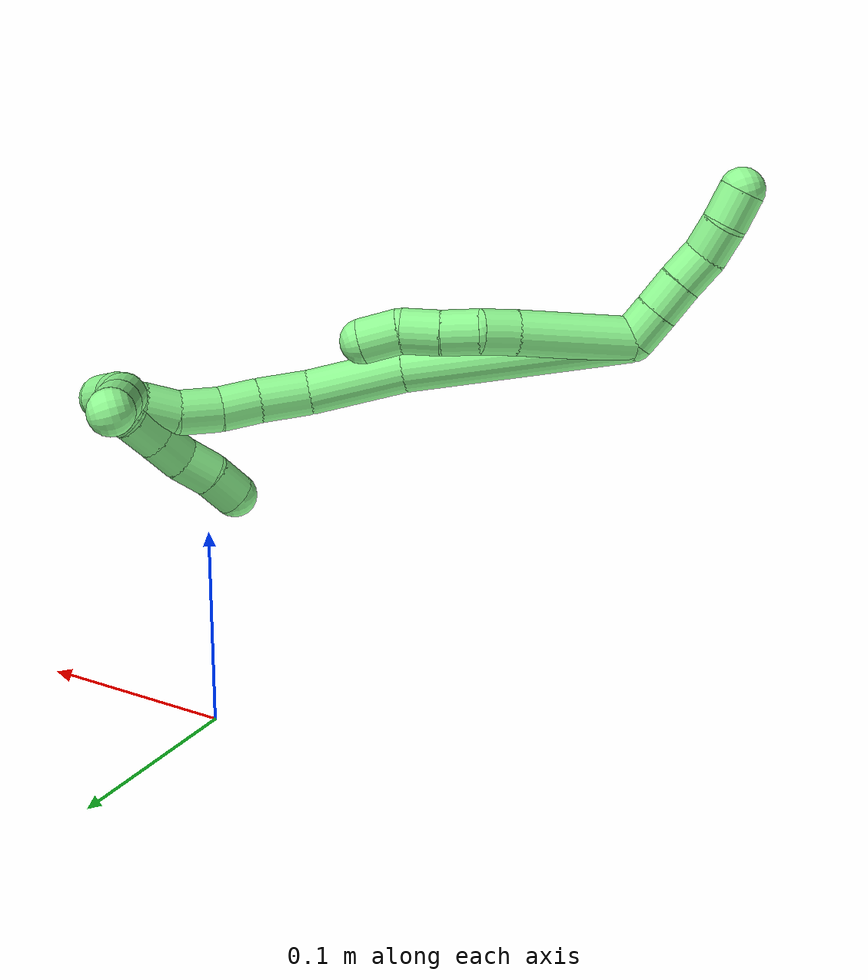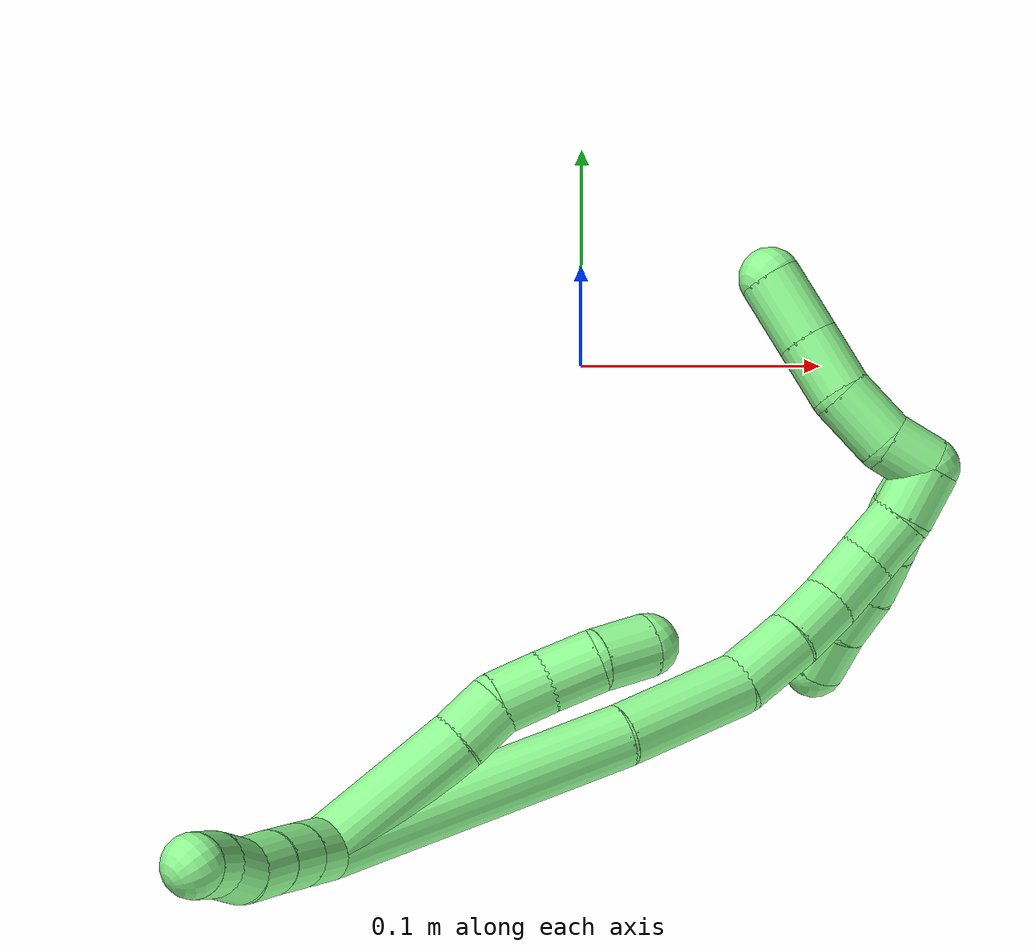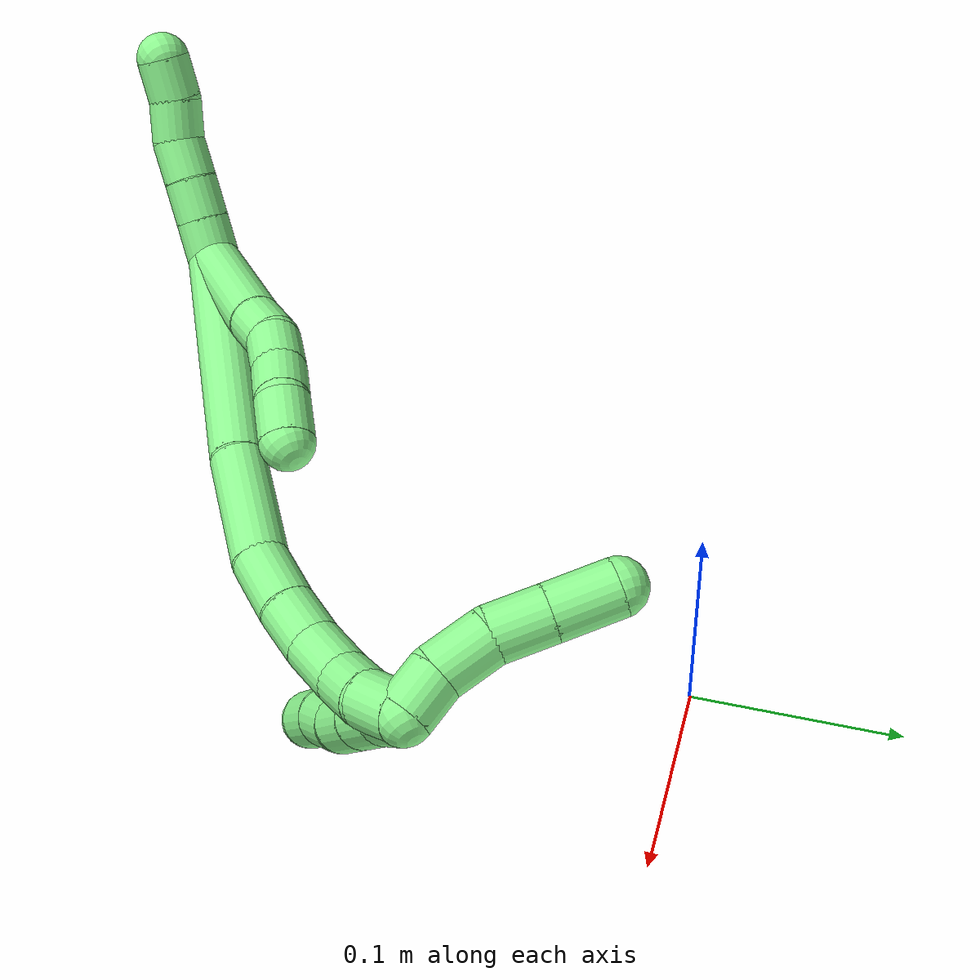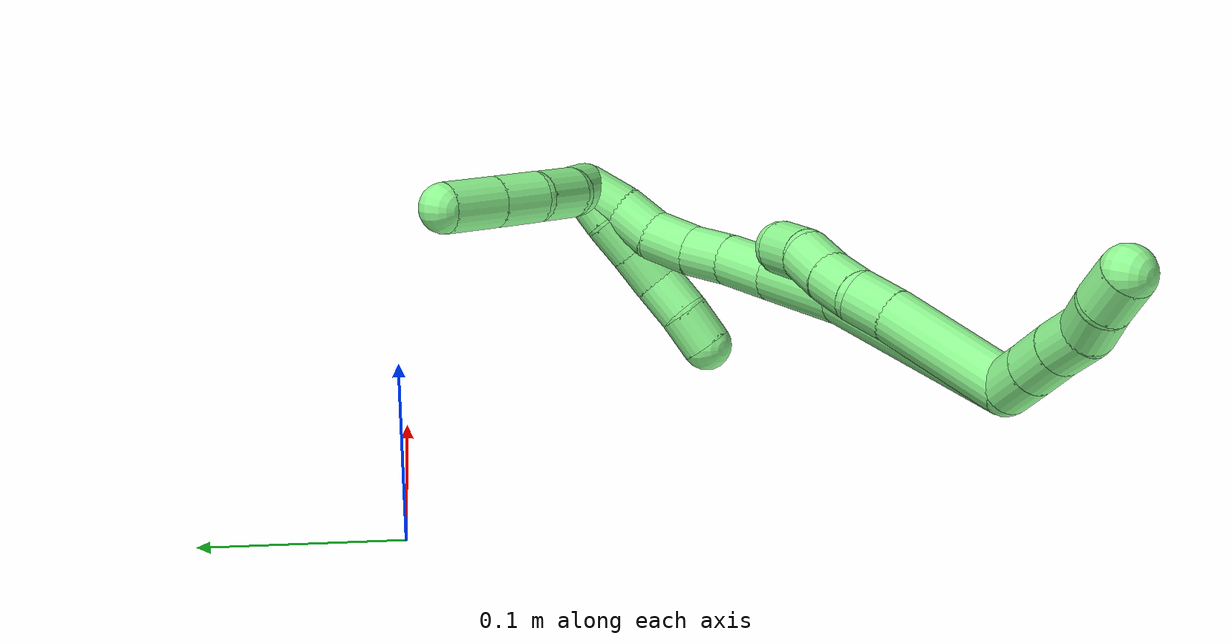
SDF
<sdf version="1.7">
 <world name="default">
  <model name="13">
   <static>0</static>
   <link name="13">
    <collision name="collision-cylinder-e_1_2_8">
     <pose>0.01048 0.004071 -0.03047 -3.00879 0.328565 -2.37861</pose>
     <geometry><cylinder><radius>0.0125</radius><length>0.064956</length></cylinder></geometry>
     <surface>
      <friction><ode><mu>1.16</mu><mu2>1.16</mu2><slip1>0</slip1><slip2>0</slip2></ode></friction>
      <contact><ode><kp>1e+06</kp><kd>1</kd><max_vel>0</max_vel><min_depth>0.001</min_depth></ode></contact>
     </surface>
    </collision>
    <visual name="visual-cylinder-e_1_2_8">
     <pose>0.01048 0.004071 -0.03047 -3.00879 0.328565 -2.37861</pose>
     <geometry><cylinder><radius>0.0125</radius><length>0.064956</length></cylinder></geometry>
     <material><ambient>0.564706 0.984314 0.572549 1</ambient></material>
    </visual>
    <collision name="collision-cylinder-e_2_8_9">
     <pose>0.023794 0.010101 -0.07051 -2.93959 0.282357 -1.90268</pose>
     <geometry><cylinder><radius>0.0125</radius><length>0.020344</length></cylinder></geometry>
     <surface>
      <friction><ode><mu>1.16</mu><mu2>1.16</mu2><slip1>0</slip1><slip2>0</slip2></ode></friction>
      <contact><ode><kp>1e+06</kp><kd>1</kd><max_vel>0</max_vel><min_depth>0.001</min_depth></ode></contact>
     </surface>
    </collision>
    <visual name="visual-cylinder-e_2_8_9">
     <pose>0.023794 0.010101 -0.07051 -2.93959 0.282357 -1.90268</pose>
     <geometry><cylinder><radius>0.0125</radius><length>0.020344</length></cylinder></geometry>
     <material><ambient>0.564706 0.984314 0.572549 1</ambient></material>
    </visual>
    <collision name="collision-cylinder-e_3_9_10">
     <pose>0.029497 0.010533 -0.09007 2.9898 0.276575 2.14146</pose>
     <geometry><cylinder><radius>0.0125</radius><length>0.02101</length></cylinder></geometry>
     <surface>
      <friction><ode><mu>1.16</mu><mu2>1.16</mu2><slip1>0</slip1><slip2>0</slip2></ode></friction>
      <contact><ode><kp>1e+06</kp><kd>1</kd><max_vel>0</max_vel><min_depth>0.001</min_depth></ode></contact>
     </surface>
    </collision>
    <visual name="visual-cylinder-e_3_9_10">
     <pose>0.029497 0.010533 -0.09007 2.9898 0.276575 2.14146</pose>
     <geometry><cylinder><radius>0.0125</radius><length>0.02101</length></cylinder></geometry>
     <material><ambient>0.564706 0.984314 0.572549 1</ambient></material>
    </visual>
    <collision name="collision-cylinder-e_4_10_11">
     <pose>0.036278 0.007262 -0.109939 2.96698 0.371839 2.27047</pose>
     <geometry><cylinder><radius>0.0125</radius><length>0.021536</length></cylinder></geometry>
     <surface>
      <friction><ode><mu>1.16</mu><mu2>1.16</mu2><slip1>0</slip1><slip2>0</slip2></ode></friction>
      <contact><ode><kp>1e+06</kp><kd>1</kd><max_vel>0</max_vel><min_depth>0.001</min_depth></ode></contact>
     </surface>
    </collision>
    <visual name="visual-cylinder-e_4_10_11">
     <pose>0.036278 0.007262 -0.109939 2.96698 0.371839 2.27047</pose>
     <geometry><cylinder><radius>0.0125</radius><length>0.021536</length></cylinder></geometry>
     <material><ambient>0.564706 0.984314 0.572549 1</ambient></material>
    </visual>
    <collision name="collision-cylinder-e_5_11_6">
     <pose>0.040981 0.002351 -0.130404 2.85078 0.071429 0.478623</pose>
     <geometry><cylinder><radius>0.0125</radius><length>0.022155</length></cylinder></geometry>
     <surface>
      <friction><ode><mu>1.16</mu><mu2>1.16</mu2><slip1>0</slip1><slip2>0</slip2></ode></friction>
      <contact><ode><kp>1e+06</kp><kd>1</kd><max_vel>0</max_vel><min_depth>0.001</min_depth></ode></contact>
     </surface>
    </collision>
    <visual name="visual-cylinder-e_5_11_6">
     <pose>0.040981 0.002351 -0.130404 2.85078 0.071429 0.478623</pose>
     <geometry><cylinder><radius>0.0125</radius><length>0.022155</length></cylinder></geometry>
     <material><ambient>0.564706 0.984314 0.572549 1</ambient></material>
    </visual>
    <collision name="collision-cylinder-e_1_2_12">
     <pose>0.005166 0.003029 0.008008 -0.361643 0.542882 -0.101673</pose>
     <geometry><cylinder><radius>0.0125</radius><length>0.02</length></cylinder></geometry>
     <surface>
      <friction><ode><mu>1.16</mu><mu2>1.16</mu2><slip1>0</slip1><slip2>0</slip2></ode></friction>
      <contact><ode><kp>1e+06</kp><kd>1</kd><max_vel>0</max_vel><min_depth>0.001</min_depth></ode></contact>
     </surface>
    </collision>
    <visual name="visual-cylinder-e_1_2_12">
     <pose>0.005166 0.003029 0.008008 -0.361643 0.542882 -0.101673</pose>
     <geometry><cylinder><radius>0.0125</radius><length>0.02</length></cylinder></geometry>
     <material><ambient>0.564706 0.984314 0.572549 1</ambient></material>
    </visual>
    <collision name="collision-cylinder-e_2_12_13">
     <pose>0.015608 0.00907 0.02396 -0.36231 0.555813 -0.104414</pose>
     <geometry><cylinder><radius>0.0125</radius><length>0.02</length></cylinder></geometry>
     <surface>
      <friction><ode><mu>1.16</mu><mu2>1.16</mu2><slip1>0</slip1><slip2>0</slip2></ode></friction>
      <contact><ode><kp>1e+06</kp><kd>1</kd><max_vel>0</max_vel><min_depth>0.001</min_depth></ode></contact>
     </surface>
    </collision>
    <visual name="visual-cylinder-e_2_12_13">
     <pose>0.015608 0.00907 0.02396 -0.36231 0.555813 -0.104414</pose>
     <geometry><cylinder><radius>0.0125</radius><length>0.02</length></cylinder></geometry>
     <material><ambient>0.564706 0.984314 0.572549 1</ambient></material>
    </visual>
    <collision name="collision-cylinder-e_3_13_14">
     <pose>0.025758 0.014923 0.04016 -0.331588 0.509032 -0.087009</pose>
     <geometry><cylinder><radius>0.0125</radius><length>0.02</length></cylinder></geometry>
     <surface>
      <friction><ode><mu>1.16</mu><mu2>1.16</mu2><slip1>0</slip1><slip2>0</slip2></ode></friction>
      <contact><ode><kp>1e+06</kp><kd>1</kd><max_vel>0</max_vel><min_depth>0.001</min_depth></ode></contact>
     </surface>
    </collision>
    <visual name="visual-cylinder-e_3_13_14">
     <pose>0.025758 0.014923 0.04016 -0.331588 0.509032 -0.087009</pose>
     <geometry><cylinder><radius>0.0125</radius><length>0.02</length></cylinder></geometry>
     <material><ambient>0.564706 0.984314 0.572549 1</ambient></material>
    </visual>
    <collision name="collision-cylinder-e_4_14_15">
     <pose>0.036461 0.022886 0.054725 -0.681774 0.62231 -0.227184</pose>
     <geometry><cylinder><radius>0.0125</radius><length>0.02</length></cylinder></geometry>
     <surface>
      <friction><ode><mu>1.16</mu><mu2>1.16</mu2><slip1>0</slip1><slip2>0</slip2></ode></friction>
      <contact><ode><kp>1e+06</kp><kd>1</kd><max_vel>0</max_vel><min_depth>0.001</min_depth></ode></contact>
     </surface>
    </collision>
    <visual name="visual-cylinder-e_4_14_15">
     <pose>0.036461 0.022886 0.054725 -0.681774 0.62231 -0.227184</pose>
     <geometry><cylinder><radius>0.0125</radius><length>0.02</length></cylinder></geometry>
     <material><ambient>0.564706 0.984314 0.572549 1</ambient></material>
    </visual>
    <collision name="collision-cylinder-e_5_15_5">
     <pose>0.049113 0.031305 0.067559 -0.468039 0.750923 -0.187375</pose>
     <geometry><cylinder><radius>0.0125</radius><length>0.02</length></cylinder></geometry>
     <surface>
      <friction><ode><mu>1.16</mu><mu2>1.16</mu2><slip1>0</slip1><slip2>0</slip2></ode></friction>
      <contact><ode><kp>1e+06</kp><kd>1</kd><max_vel>0</max_vel><min_depth>0.001</min_depth></ode></contact>
     </surface>
    </collision>
    <visual name="visual-cylinder-e_5_15_5">
     <pose>0.049113 0.031305 0.067559 -0.468039 0.750923 -0.187375</pose>
     <geometry><cylinder><radius>0.0125</radius><length>0.02</length></cylinder></geometry>
     <material><ambient>0.564706 0.984314 0.572549 1</ambient></material>
    </visual>
    <collision name="collision-cylinder-e_1_2_16">
     <pose>0.011744 -0.013809 -0.060744 2.91807 0.186342 1.38859</pose>
     <geometry><cylinder><radius>0.0125</radius><length>0.126783</length></cylinder></geometry>
     <surface>
      <friction><ode><mu>1.16</mu><mu2>1.16</mu2><slip1>0</slip1><slip2>0</slip2></ode></friction>
      <contact><ode><kp>1e+06</kp><kd>1</kd><max_vel>0</max_vel><min_depth>0.001</min_depth></ode></contact>
     </surface>
    </collision>
    <visual name="visual-cylinder-e_1_2_16">
     <pose>0.011744 -0.013809 -0.060744 2.91807 0.186342 1.38859</pose>
     <geometry><cylinder><radius>0.0125</radius><length>0.126783</length></cylinder></geometry>
     <material><ambient>0.564706 0.984314 0.572549 1</ambient></material>
    </visual>
    <collision name="collision-cylinder-e_2_16_17">
     <pose>0.02573 -0.032533 -0.148044 2.95856 0.08281 0.848087</pose>
     <geometry><cylinder><radius>0.0125</radius><length>0.054198</length></cylinder></geometry>
     <surface>
      <friction><ode><mu>1.16</mu><mu2>1.16</mu2><slip1>0</slip1><slip2>0</slip2></ode></friction>
      <contact><ode><kp>1e+06</kp><kd>1</kd><max_vel>0</max_vel><min_depth>0.001</min_depth></ode></contact>
     </surface>
    </collision>
    <visual name="visual-cylinder-e_2_16_17">
     <pose>0.02573 -0.032533 -0.148044 2.95856 0.08281 0.848087</pose>
     <geometry><cylinder><radius>0.0125</radius><length>0.054198</length></cylinder></geometry>
     <material><ambient>0.564706 0.984314 0.572549 1</ambient></material>
    </visual>
    <collision name="collision-cylinder-e_3_17_18">
     <pose>0.029713 -0.03624 -0.188907 -3.05735 0.120718 -1.92365</pose>
     <geometry><cylinder><radius>0.0125</radius><length>0.028927</length></cylinder></geometry>
     <surface>
      <friction><ode><mu>1.16</mu><mu2>1.16</mu2><slip1>0</slip1><slip2>0</slip2></ode></friction>
      <contact><ode><kp>1e+06</kp><kd>1</kd><max_vel>0</max_vel><min_depth>0.001</min_depth></ode></contact>
     </surface>
    </collision>
    <visual name="visual-cylinder-e_3_17_18">
     <pose>0.029713 -0.03624 -0.188907 -3.05735 0.120718 -1.92365</pose>
     <geometry><cylinder><radius>0.0125</radius><length>0.028927</length></cylinder></geometry>
     <material><ambient>0.564706 0.984314 0.572549 1</ambient></material>
    </visual>
    <collision name="collision-cylinder-e_4_18_19">
     <pose>0.032029 -0.033347 -0.214259 -2.99023 0.051349 -0.653096</pose>
     <geometry><cylinder><radius>0.0125</radius><length>0.022375</length></cylinder></geometry>
     <surface>
      <friction><ode><mu>1.16</mu><mu2>1.16</mu2><slip1>0</slip1><slip2>0</slip2></ode></friction>
      <contact><ode><kp>1e+06</kp><kd>1</kd><max_vel>0</max_vel><min_depth>0.001</min_depth></ode></contact>
     </surface>
    </collision>
    <visual name="visual-cylinder-e_4_18_19">
     <pose>0.032029 -0.033347 -0.214259 -2.99023 0.051349 -0.653096</pose>
     <geometry><cylinder><radius>0.0125</radius><length>0.022375</length></cylinder></geometry>
     <material><ambient>0.564706 0.984314 0.572549 1</ambient></material>
    </visual>
    <collision name="collision-cylinder-e_5_19_20">
     <pose>0.034669 -0.028525 -0.236768 -2.87438 0.172033 -1.14084</pose>
     <geometry><cylinder><radius>0.0125</radius><length>0.024126</length></cylinder></geometry>
     <surface>
      <friction><ode><mu>1.16</mu><mu2>1.16</mu2><slip1>0</slip1><slip2>0</slip2></ode></friction>
      <contact><ode><kp>1e+06</kp><kd>1</kd><max_vel>0</max_vel><min_depth>0.001</min_depth></ode></contact>
     </surface>
    </collision>
    <visual name="visual-cylinder-e_5_19_20">
     <pose>0.034669 -0.028525 -0.236768 -2.87438 0.172033 -1.14084</pose>
     <geometry><cylinder><radius>0.0125</radius><length>0.024126</length></cylinder></geometry>
     <material><ambient>0.564706 0.984314 0.572549 1</ambient></material>
    </visual>
    <collision name="collision-cylinder-e_6_20_21">
     <pose>0.04142 -0.021966 -0.256987 -2.76923 0.462475 -1.79209</pose>
     <geometry><cylinder><radius>0.0125</radius><length>0.021008</length></cylinder></geometry>
     <surface>
      <friction><ode><mu>1.16</mu><mu2>1.16</mu2><slip1>0</slip1><slip2>0</slip2></ode></friction>
      <contact><ode><kp>1e+06</kp><kd>1</kd><max_vel>0</max_vel><min_depth>0.001</min_depth></ode></contact>
     </surface>
    </collision>
    <visual name="visual-cylinder-e_6_20_21">
     <pose>0.04142 -0.021966 -0.256987 -2.76923 0.462475 -1.79209</pose>
     <geometry><cylinder><radius>0.0125</radius><length>0.021008</length></cylinder></geometry>
     <material><ambient>0.564706 0.984314 0.572549 1</ambient></material>
    </visual>
    <collision name="collision-cylinder-e_7_21_1">
     <pose>0.049883 -0.012747 -0.274665 -2.56514 0.341072 -1.05243</pose>
     <geometry><cylinder><radius>0.0125</radius><length>0.022582</length></cylinder></geometry>
     <surface>
      <friction><ode><mu>1.16</mu><mu2>1.16</mu2><slip1>0</slip1><slip2>0</slip2></ode></friction>
      <contact><ode><kp>1e+06</kp><kd>1</kd><max_vel>0</max_vel><min_depth>0.001</min_depth></ode></contact>
     </surface>
    </collision>
    <visual name="visual-cylinder-e_7_21_1">
     <pose>0.049883 -0.012747 -0.274665 -2.56514 0.341072 -1.05243</pose>
     <geometry><cylinder><radius>0.0125</radius><length>0.022582</length></cylinder></geometry>
     <material><ambient>0.564706 0.984314 0.572549 1</ambient></material>
    </visual>
    <collision name="collision-cylinder-e_1_1_22">
     <pose>0.046803 -0.011719 -0.278089 0.7149 -0.755576 -0.2943</pose>
     <geometry><cylinder><radius>0.0125</radius><length>0.02</length></cylinder></geometry>
     <surface>
      <friction><ode><mu>1.16</mu><mu2>1.16</mu2><slip1>0</slip1><slip2>0</slip2></ode></friction>
      <contact><ode><kp>1e+06</kp><kd>1</kd><max_vel>0</max_vel><min_depth>0.001</min_depth></ode></contact>
     </surface>
    </collision>
    <visual name="visual-cylinder-e_1_1_22">
     <pose>0.046803 -0.011719 -0.278089 0.7149 -0.755576 -0.2943</pose>
     <geometry><cylinder><radius>0.0125</radius><length>0.02</length></cylinder></geometry>
     <material><ambient>0.564706 0.984314 0.572549 1</ambient></material>
    </visual>
    <collision name="collision-cylinder-e_2_22_23">
     <pose>0.033571 -0.022507 -0.26778 0.896187 -0.691252 -0.342789</pose>
     <geometry><cylinder><radius>0.0125</radius><length>0.02</length></cylinder></geometry>
     <surface>
      <friction><ode><mu>1.16</mu><mu2>1.16</mu2><slip1>0</slip1><slip2>0</slip2></ode></friction>
      <contact><ode><kp>1e+06</kp><kd>1</kd><max_vel>0</max_vel><min_depth>0.001</min_depth></ode></contact>
     </surface>
    </collision>
    <visual name="visual-cylinder-e_2_22_23">
     <pose>0.033571 -0.022507 -0.26778 0.896187 -0.691252 -0.342789</pose>
     <geometry><cylinder><radius>0.0125</radius><length>0.02</length></cylinder></geometry>
     <material><ambient>0.564706 0.984314 0.572549 1</ambient></material>
    </visual>
    <collision name="collision-cylinder-e_3_23_24">
     <pose>0.020574 -0.034288 -0.258181 0.87778 -0.723795 -0.351749</pose>
     <geometry><cylinder><radius>0.0125</radius><length>0.02</length></cylinder></geometry>
     <surface>
      <friction><ode><mu>1.16</mu><mu2>1.16</mu2><slip1>0</slip1><slip2>0</slip2></ode></friction>
      <contact><ode><kp>1e+06</kp><kd>1</kd><max_vel>0</max_vel><min_depth>0.001</min_depth></ode></contact>
     </surface>
    </collision>
    <visual name="visual-cylinder-e_3_23_24">
     <pose>0.020574 -0.034288 -0.258181 0.87778 -0.723795 -0.351749</pose>
     <geometry><cylinder><radius>0.0125</radius><length>0.02</length></cylinder></geometry>
     <material><ambient>0.564706 0.984314 0.572549 1</ambient></material>
    </visual>
    <collision name="collision-cylinder-e_4_24_25">
     <pose>0.007595 -0.044275 -0.246931 0.578651 -0.6888 -0.212746</pose>
     <geometry><cylinder><radius>0.0125</radius><length>0.02</length></cylinder></geometry>
     <surface>
      <friction><ode><mu>1.16</mu><mu2>1.16</mu2><slip1>0</slip1><slip2>0</slip2></ode></friction>
      <contact><ode><kp>1e+06</kp><kd>1</kd><max_vel>0</max_vel><min_depth>0.001</min_depth></ode></contact>
     </surface>
    </collision>
    <visual name="visual-cylinder-e_4_24_25">
     <pose>0.007595 -0.044275 -0.246931 0.578651 -0.6888 -0.212746</pose>
     <geometry><cylinder><radius>0.0125</radius><length>0.02</length></cylinder></geometry>
     <material><ambient>0.564706 0.984314 0.572549 1</ambient></material>
    </visual>
    <collision name="collision-cylinder-e_5_25_4">
     <pose>-0.005755 -0.053675 -0.235541 0.810235 -0.774529 -0.34631</pose>
     <geometry><cylinder><radius>0.0125</radius><length>0.02</length></cylinder></geometry>
     <surface>
      <friction><ode><mu>1.16</mu><mu2>1.16</mu2><slip1>0</slip1><slip2>0</slip2></ode></friction>
      <contact><ode><kp>1e+06</kp><kd>1</kd><max_vel>0</max_vel><min_depth>0.001</min_depth></ode></contact>
     </surface>
    </collision>
    <visual name="visual-cylinder-e_5_25_4">
     <pose>-0.005755 -0.053675 -0.235541 0.810235 -0.774529 -0.34631</pose>
     <geometry><cylinder><radius>0.0125</radius><length>0.02</length></cylinder></geometry>
     <material><ambient>0.564706 0.984314 0.572549 1</ambient></material>
    </visual>
    <collision name="collision-cylinder-e_1_1_26">
     <pose>0.051849 0.002068 -0.279151 -1.11364 -0.178378 0.111226</pose>
     <geometry><cylinder><radius>0.0125</radius><length>0.020417</length></cylinder></geometry>
     <surface>
      <friction><ode><mu>1.16</mu><mu2>1.16</mu2><slip1>0</slip1><slip2>0</slip2></ode></friction>
      <contact><ode><kp>1e+06</kp><kd>1</kd><max_vel>0</max_vel><min_depth>0.001</min_depth></ode></contact>
     </surface>
    </collision>
    <visual name="visual-cylinder-e_1_1_26">
     <pose>0.051849 0.002068 -0.279151 -1.11364 -0.178378 0.111226</pose>
     <geometry><cylinder><radius>0.0125</radius><length>0.020417</length></cylinder></geometry>
     <material><ambient>0.564706 0.984314 0.572549 1</ambient></material>
    </visual>
    <collision name="collision-cylinder-e_2_26_27">
     <pose>0.047494 0.023535 -0.272954 -1.43017 -0.199561 0.173442</pose>
     <geometry><cylinder><radius>0.0125</radius><length>0.025664</length></cylinder></geometry>
     <surface>
      <friction><ode><mu>1.16</mu><mu2>1.16</mu2><slip1>0</slip1><slip2>0</slip2></ode></friction>
      <contact><ode><kp>1e+06</kp><kd>1</kd><max_vel>0</max_vel><min_depth>0.001</min_depth></ode></contact>
     </surface>
    </collision>
    <visual name="visual-cylinder-e_2_26_27">
     <pose>0.047494 0.023535 -0.272954 -1.43017 -0.199561 0.173442</pose>
     <geometry><cylinder><radius>0.0125</radius><length>0.025664</length></cylinder></geometry>
     <material><ambient>0.564706 0.984314 0.572549 1</ambient></material>
    </visual>
    <collision name="collision-cylinder-e_3_27_28">
     <pose>0.041823 0.047976 -0.272723 -1.6979 -0.253171 0.287138</pose>
     <geometry><cylinder><radius>0.0125</radius><length>0.024966</length></cylinder></geometry>
     <surface>
      <friction><ode><mu>1.16</mu><mu2>1.16</mu2><slip1>0</slip1><slip2>0</slip2></ode></friction>
      <contact><ode><kp>1e+06</kp><kd>1</kd><max_vel>0</max_vel><min_depth>0.001</min_depth></ode></contact>
     </surface>
    </collision>
    <visual name="visual-cylinder-e_3_27_28">
     <pose>0.041823 0.047976 -0.272723 -1.6979 -0.253171 0.287138</pose>
     <geometry><cylinder><radius>0.0125</radius><length>0.024966</length></cylinder></geometry>
     <material><ambient>0.564706 0.984314 0.572549 1</ambient></material>
    </visual>
    <collision name="collision-cylinder-e_4_28_3">
     <pose>0.035129 0.073891 -0.27595 -1.6919 -0.249003 0.280748</pose>
     <geometry><cylinder><radius>0.0125</radius><length>0.028954</length></cylinder></geometry>
     <surface>
      <friction><ode><mu>1.16</mu><mu2>1.16</mu2><slip1>0</slip1><slip2>0</slip2></ode></friction>
      <contact><ode><kp>1e+06</kp><kd>1</kd><max_vel>0</max_vel><min_depth>0.001</min_depth></ode></contact>
     </surface>
    </collision>
    <visual name="visual-cylinder-e_4_28_3">
     <pose>0.035129 0.073891 -0.27595 -1.6919 -0.249003 0.280748</pose>
     <geometry><cylinder><radius>0.0125</radius><length>0.028954</length></cylinder></geometry>
     <material><ambient>0.564706 0.984314 0.572549 1</ambient></material>
    </visual>
    <collision name="collision-sphere-3">
     <pose>0.031561 0.087819 -0.277645 0 -0 0</pose>
     <geometry><sphere><radius>0.0125</radius></sphere></geometry>
     <surface>
      <friction><ode><mu>1.16</mu><mu2>1.16</mu2><slip1>0</slip1><slip2>0</slip2></ode></friction>
      <contact><ode><kp>1e+06</kp><kd>1</kd><max_vel>0</max_vel><min_depth>0.001</min_depth></ode></contact>
     </surface>
    </collision>
    <visual name="visual-sphere-3">
     <pose>0.031561 0.087819 -0.277645 0 -0 0</pose>
     <geometry><sphere><radius>0.0125</radius></sphere></geometry>
     <material><ambient>0.564706 0.984314 0.572549 1</ambient></material>
    </visual>
    <collision name="collision-sphere-28">
     <pose>0.038697 0.059964 -0.274255 0 -0 0</pose>
     <geometry><sphere><radius>0.0125</radius></sphere></geometry>
     <surface>
      <friction><ode><mu>1.16</mu><mu2>1.16</mu2><slip1>0</slip1><slip2>0</slip2></ode></friction>
      <contact><ode><kp>1e+06</kp><kd>1</kd><max_vel>0</max_vel><min_depth>0.001</min_depth></ode></contact>
     </surface>
    </collision>
    <visual name="visual-sphere-28">
     <pose>0.038697 0.059964 -0.274255 0 -0 0</pose>
     <geometry><sphere><radius>0.0125</radius></sphere></geometry>
     <material><ambient>0.564706 0.984314 0.572549 1</ambient></material>
    </visual>
    <collision name="collision-sphere-27">
     <pose>0.04495 0.035989 -0.271191 0 -0 0</pose>
     <geometry><sphere><radius>0.0125</radius></sphere></geometry>
     <surface>
      <friction><ode><mu>1.16</mu><mu2>1.16</mu2><slip1>0</slip1><slip2>0</slip2></ode></friction>
      <contact><ode><kp>1e+06</kp><kd>1</kd><max_vel>0</max_vel><min_depth>0.001</min_depth></ode></contact>
     </surface>
    </collision>
    <visual name="visual-sphere-27">
     <pose>0.04495 0.035989 -0.271191 0 -0 0</pose>
     <geometry><sphere><radius>0.0125</radius></sphere></geometry>
     <material><ambient>0.564706 0.984314 0.572549 1</ambient></material>
    </visual>
    <collision name="collision-sphere-26">
     <pose>0.050038 0.011082 -0.274717 0 -0 0</pose>
     <geometry><sphere><radius>0.0125</radius></sphere></geometry>
     <surface>
      <friction><ode><mu>1.16</mu><mu2>1.16</mu2><slip1>0</slip1><slip2>0</slip2></ode></friction>
      <contact><ode><kp>1e+06</kp><kd>1</kd><max_vel>0</max_vel><min_depth>0.001</min_depth></ode></contact>
     </surface>
    </collision>
    <visual name="visual-sphere-26">
     <pose>0.050038 0.011082 -0.274717 0 -0 0</pose>
     <geometry><sphere><radius>0.0125</radius></sphere></geometry>
     <material><ambient>0.564706 0.984314 0.572549 1</ambient></material>
    </visual>
    <collision name="collision-sphere-4">
     <pose>-0.012749 -0.058853 -0.230614 0 -0 0</pose>
     <geometry><sphere><radius>0.0125</radius></sphere></geometry>
     <surface>
      <friction><ode><mu>1.16</mu><mu2>1.16</mu2><slip1>0</slip1><slip2>0</slip2></ode></friction>
      <contact><ode><kp>1e+06</kp><kd>1</kd><max_vel>0</max_vel><min_depth>0.001</min_depth></ode></contact>
     </surface>
    </collision>
    <visual name="visual-sphere-4">
     <pose>-0.012749 -0.058853 -0.230614 0 -0 0</pose>
     <geometry><sphere><radius>0.0125</radius></sphere></geometry>
     <material><ambient>0.564706 0.984314 0.572549 1</ambient></material>
    </visual>
    <collision name="collision-sphere-25">
     <pose>0.001239 -0.048497 -0.240468 0 -0 0</pose>
     <geometry><sphere><radius>0.0125</radius></sphere></geometry>
     <surface>
      <friction><ode><mu>1.16</mu><mu2>1.16</mu2><slip1>0</slip1><slip2>0</slip2></ode></friction>
      <contact><ode><kp>1e+06</kp><kd>1</kd><max_vel>0</max_vel><min_depth>0.001</min_depth></ode></contact>
     </surface>
    </collision>
    <visual name="visual-sphere-25">
     <pose>0.001239 -0.048497 -0.240468 0 -0 0</pose>
     <geometry><sphere><radius>0.0125</radius></sphere></geometry>
     <material><ambient>0.564706 0.984314 0.572549 1</ambient></material>
    </visual>
    <collision name="collision-sphere-24">
     <pose>0.013951 -0.040053 -0.253394 0 -0 0</pose>
     <geometry><sphere><radius>0.0125</radius></sphere></geometry>
     <surface>
      <friction><ode><mu>1.16</mu><mu2>1.16</mu2><slip1>0</slip1><slip2>0</slip2></ode></friction>
      <contact><ode><kp>1e+06</kp><kd>1</kd><max_vel>0</max_vel><min_depth>0.001</min_depth></ode></contact>
     </surface>
    </collision>
    <visual name="visual-sphere-24">
     <pose>0.013951 -0.040053 -0.253394 0 -0 0</pose>
     <geometry><sphere><radius>0.0125</radius></sphere></geometry>
     <material><ambient>0.564706 0.984314 0.572549 1</ambient></material>
    </visual>
    <collision name="collision-sphere-23">
     <pose>0.027196 -0.028524 -0.262968 0 -0 0</pose>
     <geometry><sphere><radius>0.0125</radius></sphere></geometry>
     <surface>
      <friction><ode><mu>1.16</mu><mu2>1.16</mu2><slip1>0</slip1><slip2>0</slip2></ode></friction>
      <contact><ode><kp>1e+06</kp><kd>1</kd><max_vel>0</max_vel><min_depth>0.001</min_depth></ode></contact>
     </surface>
    </collision>
    <visual name="visual-sphere-23">
     <pose>0.027196 -0.028524 -0.262968 0 -0 0</pose>
     <geometry><sphere><radius>0.0125</radius></sphere></geometry>
     <material><ambient>0.564706 0.984314 0.572549 1</ambient></material>
    </visual>
    <collision name="collision-sphere-22">
     <pose>0.039946 -0.01649 -0.272592 0 -0 0</pose>
     <geometry><sphere><radius>0.0125</radius></sphere></geometry>
     <surface>
      <friction><ode><mu>1.16</mu><mu2>1.16</mu2><slip1>0</slip1><slip2>0</slip2></ode></friction>
      <contact><ode><kp>1e+06</kp><kd>1</kd><max_vel>0</max_vel><min_depth>0.001</min_depth></ode></contact>
     </surface>
    </collision>
    <visual name="visual-sphere-22">
     <pose>0.039946 -0.01649 -0.272592 0 -0 0</pose>
     <geometry><sphere><radius>0.0125</radius></sphere></geometry>
     <material><ambient>0.564706 0.984314 0.572549 1</ambient></material>
    </visual>
    <collision name="collision-sphere-1">
     <pose>0.05366 -0.006947 -0.283586 0 -0 0</pose>
     <geometry><sphere><radius>0.0125</radius></sphere></geometry>
     <surface>
      <friction><ode><mu>1.16</mu><mu2>1.16</mu2><slip1>0</slip1><slip2>0</slip2></ode></friction>
      <contact><ode><kp>1e+06</kp><kd>1</kd><max_vel>0</max_vel><min_depth>0.001</min_depth></ode></contact>
     </surface>
    </collision>
    <visual name="visual-sphere-1">
     <pose>0.05366 -0.006947 -0.283586 0 -0 0</pose>
     <geometry><sphere><radius>0.0125</radius></sphere></geometry>
     <material><ambient>0.564706 0.984314 0.572549 1</ambient></material>
    </visual>
    <collision name="collision-sphere-21">
     <pose>0.046107 -0.018546 -0.265744 0 -0 0</pose>
     <geometry><sphere><radius>0.0125</radius></sphere></geometry>
     <surface>
      <friction><ode><mu>1.16</mu><mu2>1.16</mu2><slip1>0</slip1><slip2>0</slip2></ode></friction>
      <contact><ode><kp>1e+06</kp><kd>1</kd><max_vel>0</max_vel><min_depth>0.001</min_depth></ode></contact>
     </surface>
    </collision>
    <visual name="visual-sphere-21">
     <pose>0.046107 -0.018546 -0.265744 0 -0 0</pose>
     <geometry><sphere><radius>0.0125</radius></sphere></geometry>
     <material><ambient>0.564706 0.984314 0.572549 1</ambient></material>
    </visual>
    <collision name="collision-sphere-6">
     <pose>0.041771 -0.000817 -0.140989 0 -0 0</pose>
     <geometry><sphere><radius>0.0125</radius></sphere></geometry>
     <surface>
      <friction><ode><mu>1.16</mu><mu2>1.16</mu2><slip1>0</slip1><slip2>0</slip2></ode></friction>
      <contact><ode><kp>1e+06</kp><kd>1</kd><max_vel>0</max_vel><min_depth>0.001</min_depth></ode></contact>
     </surface>
    </collision>
    <visual name="visual-sphere-6">
     <pose>0.041771 -0.000817 -0.140989 0 -0 0</pose>
     <geometry><sphere><radius>0.0125</radius></sphere></geometry>
     <material><ambient>0.564706 0.984314 0.572549 1</ambient></material>
    </visual>
    <collision name="collision-sphere-11">
     <pose>0.04019 0.005519 -0.119819 0 -0 0</pose>
     <geometry><sphere><radius>0.0125</radius></sphere></geometry>
     <surface>
      <friction><ode><mu>1.16</mu><mu2>1.16</mu2><slip1>0</slip1><slip2>0</slip2></ode></friction>
      <contact><ode><kp>1e+06</kp><kd>1</kd><max_vel>0</max_vel><min_depth>0.001</min_depth></ode></contact>
     </surface>
    </collision>
    <visual name="visual-sphere-11">
     <pose>0.04019 0.005519 -0.119819 0 -0 0</pose>
     <geometry><sphere><radius>0.0125</radius></sphere></geometry>
     <material><ambient>0.564706 0.984314 0.572549 1</ambient></material>
    </visual>
    <collision name="collision-sphere-10">
     <pose>0.032366 0.009005 -0.10006 0 -0 0</pose>
     <geometry><sphere><radius>0.0125</radius></sphere></geometry>
     <surface>
      <friction><ode><mu>1.16</mu><mu2>1.16</mu2><slip1>0</slip1><slip2>0</slip2></ode></friction>
      <contact><ode><kp>1e+06</kp><kd>1</kd><max_vel>0</max_vel><min_depth>0.001</min_depth></ode></contact>
     </surface>
    </collision>
    <visual name="visual-sphere-10">
     <pose>0.032366 0.009005 -0.10006 0 -0 0</pose>
     <geometry><sphere><radius>0.0125</radius></sphere></geometry>
     <material><ambient>0.564706 0.984314 0.572549 1</ambient></material>
    </visual>
    <collision name="collision-sphere-9">
     <pose>0.026628 0.012061 -0.08008 0 -0 0</pose>
     <geometry><sphere><radius>0.0125</radius></sphere></geometry>
     <surface>
      <friction><ode><mu>1.16</mu><mu2>1.16</mu2><slip1>0</slip1><slip2>0</slip2></ode></friction>
      <contact><ode><kp>1e+06</kp><kd>1</kd><max_vel>0</max_vel><min_depth>0.001</min_depth></ode></contact>
     </surface>
    </collision>
    <visual name="visual-sphere-9">
     <pose>0.026628 0.012061 -0.08008 0 -0 0</pose>
     <geometry><sphere><radius>0.0125</radius></sphere></geometry>
     <material><ambient>0.564706 0.984314 0.572549 1</ambient></material>
    </visual>
    <collision name="collision-sphere-2">
     <geometry><sphere><radius>0.0125</radius></sphere></geometry>
     <surface>
      <friction><ode><mu>1.16</mu><mu2>1.16</mu2><slip1>0</slip1><slip2>0</slip2></ode></friction>
      <contact><ode><kp>1e+06</kp><kd>1</kd><max_vel>0</max_vel><min_depth>0.001</min_depth></ode></contact>
     </surface>
    </collision>
    <visual name="visual-sphere-2">
     <geometry><sphere><radius>0.0125</radius></sphere></geometry>
     <material><ambient>0.564706 0.984314 0.572549 1</ambient></material>
    </visual>
    <collision name="collision-sphere-19">
     <pose>0.032604 -0.031663 -0.225305 0 -0 0</pose>
     <geometry><sphere><radius>0.0125</radius></sphere></geometry>
     <surface>
      <friction><ode><mu>1.16</mu><mu2>1.16</mu2><slip1>0</slip1><slip2>0</slip2></ode></friction>
      <contact><ode><kp>1e+06</kp><kd>1</kd><max_vel>0</max_vel><min_depth>0.001</min_depth></ode></contact>
     </surface>
    </collision>
    <visual name="visual-sphere-19">
     <pose>0.032604 -0.031663 -0.225305 0 -0 0</pose>
     <geometry><sphere><radius>0.0125</radius></sphere></geometry>
     <material><ambient>0.564706 0.984314 0.572549 1</ambient></material>
    </visual>
    <collision name="collision-sphere-8">
     <pose>0.02096 0.008141 -0.06094 0 -0 0</pose>
     <geometry><sphere><radius>0.0125</radius></sphere></geometry>
     <surface>
      <friction><ode><mu>1.16</mu><mu2>1.16</mu2><slip1>0</slip1><slip2>0</slip2></ode></friction>
      <contact><ode><kp>1e+06</kp><kd>1</kd><max_vel>0</max_vel><min_depth>0.001</min_depth></ode></contact>
     </surface>
    </collision>
    <visual name="visual-sphere-8">
     <pose>0.02096 0.008141 -0.06094 0 -0 0</pose>
     <geometry><sphere><radius>0.0125</radius></sphere></geometry>
     <material><ambient>0.564706 0.984314 0.572549 1</ambient></material>
    </visual>
    <collision name="collision-sphere-12">
     <pose>0.010332 0.006059 0.016017 0 -0 0</pose>
     <geometry><sphere><radius>0.0125</radius></sphere></geometry>
     <surface>
      <friction><ode><mu>1.16</mu><mu2>1.16</mu2><slip1>0</slip1><slip2>0</slip2></ode></friction>
      <contact><ode><kp>1e+06</kp><kd>1</kd><max_vel>0</max_vel><min_depth>0.001</min_depth></ode></contact>
     </surface>
    </collision>
    <visual name="visual-sphere-12">
     <pose>0.010332 0.006059 0.016017 0 -0 0</pose>
     <geometry><sphere><radius>0.0125</radius></sphere></geometry>
     <material><ambient>0.564706 0.984314 0.572549 1</ambient></material>
    </visual>
    <collision name="collision-sphere-13">
     <pose>0.020885 0.01208 0.031903 0 -0 0</pose>
     <geometry><sphere><radius>0.0125</radius></sphere></geometry>
     <surface>
      <friction><ode><mu>1.16</mu><mu2>1.16</mu2><slip1>0</slip1><slip2>0</slip2></ode></friction>
      <contact><ode><kp>1e+06</kp><kd>1</kd><max_vel>0</max_vel><min_depth>0.001</min_depth></ode></contact>
     </surface>
    </collision>
    <visual name="visual-sphere-13">
     <pose>0.020885 0.01208 0.031903 0 -0 0</pose>
     <geometry><sphere><radius>0.0125</radius></sphere></geometry>
     <material><ambient>0.564706 0.984314 0.572549 1</ambient></material>
    </visual>
    <collision name="collision-sphere-14">
     <pose>0.030631 0.017766 0.048416 0 -0 0</pose>
     <geometry><sphere><radius>0.0125</radius></sphere></geometry>
     <surface>
      <friction><ode><mu>1.16</mu><mu2>1.16</mu2><slip1>0</slip1><slip2>0</slip2></ode></friction>
      <contact><ode><kp>1e+06</kp><kd>1</kd><max_vel>0</max_vel><min_depth>0.001</min_depth></ode></contact>
     </surface>
    </collision>
    <visual name="visual-sphere-14">
     <pose>0.030631 0.017766 0.048416 0 -0 0</pose>
     <geometry><sphere><radius>0.0125</radius></sphere></geometry>
     <material><ambient>0.564706 0.984314 0.572549 1</ambient></material>
    </visual>
    <collision name="collision-sphere-15">
     <pose>0.04229 0.028007 0.061034 0 -0 0</pose>
     <geometry><sphere><radius>0.0125</radius></sphere></geometry>
     <surface>
      <friction><ode><mu>1.16</mu><mu2>1.16</mu2><slip1>0</slip1><slip2>0</slip2></ode></friction>
      <contact><ode><kp>1e+06</kp><kd>1</kd><max_vel>0</max_vel><min_depth>0.001</min_depth></ode></contact>
     </surface>
    </collision>
    <visual name="visual-sphere-15">
     <pose>0.04229 0.028007 0.061034 0 -0 0</pose>
     <geometry><sphere><radius>0.0125</radius></sphere></geometry>
     <material><ambient>0.564706 0.984314 0.572549 1</ambient></material>
    </visual>
    <collision name="collision-sphere-5">
     <pose>0.055936 0.034603 0.074083 0 -0 0</pose>
     <geometry><sphere><radius>0.0125</radius></sphere></geometry>
     <surface>
      <friction><ode><mu>1.16</mu><mu2>1.16</mu2><slip1>0</slip1><slip2>0</slip2></ode></friction>
      <contact><ode><kp>1e+06</kp><kd>1</kd><max_vel>0</max_vel><min_depth>0.001</min_depth></ode></contact>
     </surface>
    </collision>
    <visual name="visual-sphere-5">
     <pose>0.055936 0.034603 0.074083 0 -0 0</pose>
     <geometry><sphere><radius>0.0125</radius></sphere></geometry>
     <material><ambient>0.564706 0.984314 0.572549 1</ambient></material>
    </visual>
    <collision name="collision-sphere-16">
     <pose>0.023489 -0.027617 -0.121489 0 -0 0</pose>
     <geometry><sphere><radius>0.0125</radius></sphere></geometry>
     <surface>
      <friction><ode><mu>1.16</mu><mu2>1.16</mu2><slip1>0</slip1><slip2>0</slip2></ode></friction>
      <contact><ode><kp>1e+06</kp><kd>1</kd><max_vel>0</max_vel><min_depth>0.001</min_depth></ode></contact>
     </surface>
    </collision>
    <visual name="visual-sphere-16">
     <pose>0.023489 -0.027617 -0.121489 0 -0 0</pose>
     <geometry><sphere><radius>0.0125</radius></sphere></geometry>
     <material><ambient>0.564706 0.984314 0.572549 1</ambient></material>
    </visual>
    <collision name="collision-sphere-17">
     <pose>0.027972 -0.037448 -0.174599 0 -0 0</pose>
     <geometry><sphere><radius>0.0125</radius></sphere></geometry>
     <surface>
      <friction><ode><mu>1.16</mu><mu2>1.16</mu2><slip1>0</slip1><slip2>0</slip2></ode></friction>
      <contact><ode><kp>1e+06</kp><kd>1</kd><max_vel>0</max_vel><min_depth>0.001</min_depth></ode></contact>
     </surface>
    </collision>
    <visual name="visual-sphere-17">
     <pose>0.027972 -0.037448 -0.174599 0 -0 0</pose>
     <geometry><sphere><radius>0.0125</radius></sphere></geometry>
     <material><ambient>0.564706 0.984314 0.572549 1</ambient></material>
    </visual>
    <collision name="collision-sphere-18">
     <pose>0.031455 -0.035032 -0.203214 0 -0 0</pose>
     <geometry><sphere><radius>0.0125</radius></sphere></geometry>
     <surface>
      <friction><ode><mu>1.16</mu><mu2>1.16</mu2><slip1>0</slip1><slip2>0</slip2></ode></friction>
      <contact><ode><kp>1e+06</kp><kd>1</kd><max_vel>0</max_vel><min_depth>0.001</min_depth></ode></contact>
     </surface>
    </collision>
    <visual name="visual-sphere-18">
     <pose>0.031455 -0.035032 -0.203214 0 -0 0</pose>
     <geometry><sphere><radius>0.0125</radius></sphere></geometry>
     <material><ambient>0.564706 0.984314 0.572549 1</ambient></material>
    </visual>
    <collision name="collision-sphere-20">
     <pose>0.036734 -0.025386 -0.248231 0 -0 0</pose>
     <geometry><sphere><radius>0.0125</radius></sphere></geometry>
     <surface>
      <friction><ode><mu>1.16</mu><mu2>1.16</mu2><slip1>0</slip1><slip2>0</slip2></ode></friction>
      <contact><ode><kp>1e+06</kp><kd>1</kd><max_vel>0</max_vel><min_depth>0.001</min_depth></ode></contact>
     </surface>
    </collision>
    <visual name="visual-sphere-20">
     <pose>0.036734 -0.025386 -0.248231 0 -0 0</pose>
     <geometry><sphere><radius>0.0125</radius></sphere></geometry>
     <material><ambient>0.564706 0.984314 0.572549 1</ambient></material>
    </visual>
    <inertial>
     <pose>0.026404 -0.004757 -0.137607 0 -0 0</pose>
     <mass>0.75</mass>
     <inertia>
      <ixx>0.000206</ixx>
      <ixy>0</ixy>
      <ixz>0</ixz>
      <iyy>0.000161</iyy>
      <iyz>0</iyz>
      <izz>-3.7e-05</izz>
     </inertia>
    </inertial>
   </link>
   <pose>-0.096191 -0.260888 0.139241 1.08742 -1.02866 -0.415409</pose>
  </model>
 </world>
</sdf>
